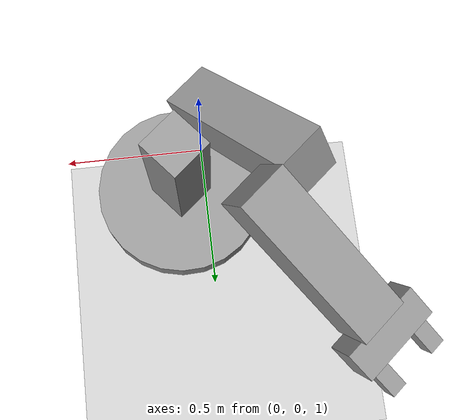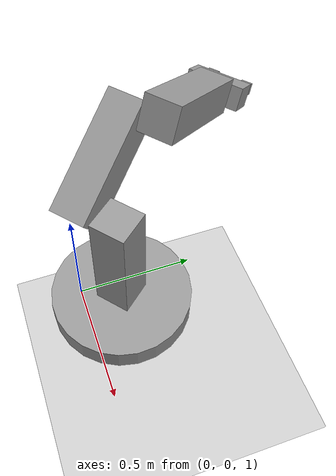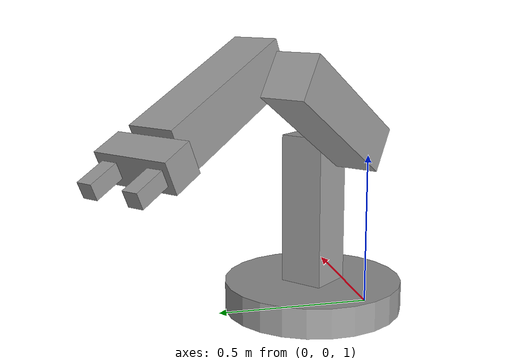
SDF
<sdf version="1.7">
 <world name="default">
  <model name="ground_plane">
   <static>1</static>
   <link name="link">
    <collision name="collision">
     <geometry><plane><normal>0 0 1</normal><size>100 100</size></plane></geometry>
     <surface>
      <contact><collide_bitmask>65535</collide_bitmask></contact>
      <friction><ode><mu>100</mu><mu2>50</mu2></ode></friction>
     </surface>
    </collision>
    <visual name="visual">
     <cast_shadows>0</cast_shadows>
     <geometry><plane><normal>0 0 1</normal><size>100 100</size></plane></geometry>
     <material>
      <script><uri>file://media/materials/scripts/gazebo.material</uri><name>Gazebo/Grey</name></script>
     </material>
    </visual>
   </link>
  </model>
  <model name="fixed_arm_robot_clone_1_clone">
   <link name="link_0">
    <inertial>
     <mass>1</mass>
     <inertia><ixx>0.145833</ixx><ixy>0</ixy><ixz>0</ixz><iyy>0.145833</iyy><iyz>0</iyz><izz>0.125</izz></inertia>
    </inertial>
    <pose>-0.37347 -0.501985 -0.410714 0 -0 0</pose>
    <visual name="visual">
     <geometry><cylinder><radius>0.3</radius><length>0.1</length></cylinder></geometry>
     <material>
      <lighting>1</lighting>
      <script><uri>file://media/materials/scripts/gazebo.material</uri><name>Gazebo/Grey</name></script>
      <shader type="pixel"><normal_map>__default__</normal_map></shader>
      <ambient>0.3 0.3 0.3 1</ambient>
      <diffuse>0.7 0.7 0.7 1</diffuse>
      <specular>0.01 0.01 0.01 1</specular>
      <emissive>0 0 0 1</emissive>
     </material>
    </visual>
    <collision name="collision">
     <geometry><cylinder><radius>0.3</radius><length>0.1</length></cylinder></geometry>
     <surface>
      <friction>
       <ode><mu>1</mu><mu2>1</mu2><fdir1>0 0 0</fdir1><slip1>0</slip1><slip2>0</slip2></ode>
       <torsional>
        <coefficient>1</coefficient>
        <patch_radius>0</patch_radius>
        <surface_radius>0</surface_radius>
        <use_patch_radius>1</use_patch_radius>
        <ode><slip>0</slip></ode>
       </torsional>
      </friction>
      <bounce><restitution_coefficient>0</restitution_coefficient><threshold>1e+06</threshold></bounce>
      <contact>
       <collide_without_contact>0</collide_without_contact>
       <collide_without_contact_bitmask>1</collide_without_contact_bitmask>
       <collide_bitmask>1</collide_bitmask>
       <ode>
        <soft_cfm>0</soft_cfm>
        <soft_erp>0.2</soft_erp>
        <kp>1e+13</kp>
        <kd>1</kd>
        <max_vel>0.01</max_vel>
        <min_depth>0</min_depth>
       </ode>
       <bullet>
        <split_impulse>1</split_impulse>
        <split_impulse_penetration_threshold>-0.01</split_impulse_penetration_threshold>
        <soft_cfm>0</soft_cfm>
        <soft_erp>0.2</soft_erp>
        <kp>1e+13</kp>
        <kd>1</kd>
       </bullet>
      </contact>
     </surface>
    </collision>
   </link>
   <link name="link_1">
    <inertial>
     <mass>1</mass>
     <inertia>
      <ixx>0.166667</ixx>
      <ixy>0</ixy>
      <ixz>0</ixz>
      <iyy>0.166667</iyy>
      <iyz>0</iyz>
      <izz>0.166667</izz>
     </inertia>
    </inertial>
    <pose>-0.37347 -0.501985 -0.110714 0 -0 0</pose>
    <visual name="visual">
     <geometry><box><size>0.15 0.15 0.5</size></box></geometry>
     <material>
      <lighting>1</lighting>
      <script><uri>file://media/materials/scripts/gazebo.material</uri><name>Gazebo/Grey</name></script>
      <shader type="pixel"><normal_map>__default__</normal_map></shader>
      <ambient>0.3 0.3 0.3 1</ambient>
      <diffuse>0.7 0.7 0.7 1</diffuse>
      <specular>0.01 0.01 0.01 1</specular>
      <emissive>0 0 0 1</emissive>
     </material>
    </visual>
    <collision name="collision">
     <geometry><box><size>0.15 0.15 0.5</size></box></geometry>
     <surface>
      <friction>
       <ode><mu>1</mu><mu2>1</mu2><fdir1>0 0 0</fdir1><slip1>0</slip1><slip2>0</slip2></ode>
       <torsional>
        <coefficient>1</coefficient>
        <patch_radius>0</patch_radius>
        <surface_radius>0</surface_radius>
        <use_patch_radius>1</use_patch_radius>
        <ode><slip>0</slip></ode>
       </torsional>
      </friction>
      <bounce><restitution_coefficient>0</restitution_coefficient><threshold>1e+06</threshold></bounce>
      <contact>
       <collide_without_contact>0</collide_without_contact>
       <collide_without_contact_bitmask>1</collide_without_contact_bitmask>
       <collide_bitmask>1</collide_bitmask>
       <ode>
        <soft_cfm>0</soft_cfm>
        <soft_erp>0.2</soft_erp>
        <kp>1e+13</kp>
        <kd>1</kd>
        <max_vel>0.01</max_vel>
        <min_depth>0</min_depth>
       </ode>
       <bullet>
        <split_impulse>1</split_impulse>
        <split_impulse_penetration_threshold>-0.01</split_impulse_penetration_threshold>
        <soft_cfm>0</soft_cfm>
        <soft_erp>0.2</soft_erp>
        <kp>1e+13</kp>
        <kd>1</kd>
       </bullet>
      </contact>
     </surface>
    </collision>
   </link>
   <link name="link_1_clone">
    <inertial>
     <mass>1</mass>
     <inertia>
      <ixx>0.166667</ixx>
      <ixy>0</ixy>
      <ixz>0</ixz>
      <iyy>0.166667</iyy>
      <iyz>0</iyz>
      <izz>0.166667</izz>
     </inertia>
    </inertial>
    <pose>-0.37347 -0.351985 0.139286 0 1 0</pose>
    <visual name="visual">
     <pose>0 0 0.175 0 -0 0</pose>
     <geometry><box><size>0.15 0.15 0.5</size></box></geometry>
     <material>
      <lighting>1</lighting>
      <script><uri>file://media/materials/scripts/gazebo.material</uri><name>Gazebo/Grey</name></script>
      <shader type="pixel"><normal_map>__default__</normal_map></shader>
      <ambient>0.3 0.3 0.3 1</ambient>
      <diffuse>0.7 0.7 0.7 1</diffuse>
      <specular>0.01 0.01 0.01 1</specular>
      <emissive>0 0 0 1</emissive>
     </material>
    </visual>
    <collision name="collision">
     <pose>0 0 0.175 0 -0 0</pose>
     <geometry><box><size>0.15 0.15 0.5</size></box></geometry>
     <surface>
      <friction>
       <ode><mu>1</mu><mu2>1</mu2><fdir1>0 0 0</fdir1><slip1>0</slip1><slip2>0</slip2></ode>
       <torsional>
        <coefficient>1</coefficient>
        <patch_radius>0</patch_radius>
        <surface_radius>0</surface_radius>
        <use_patch_radius>1</use_patch_radius>
        <ode><slip>0</slip></ode>
       </torsional>
      </friction>
      <bounce><restitution_coefficient>0</restitution_coefficient><threshold>1e+06</threshold></bounce>
      <contact>
       <collide_without_contact>0</collide_without_contact>
       <collide_without_contact_bitmask>1</collide_without_contact_bitmask>
       <collide_bitmask>1</collide_bitmask>
       <ode>
        <soft_cfm>0</soft_cfm>
        <soft_erp>0.2</soft_erp>
        <kp>1e+13</kp>
        <kd>1</kd>
        <max_vel>0.01</max_vel>
        <min_depth>0</min_depth>
       </ode>
       <bullet>
        <split_impulse>1</split_impulse>
        <split_impulse_penetration_threshold>-0.01</split_impulse_penetration_threshold>
        <soft_cfm>0</soft_cfm>
        <soft_erp>0.2</soft_erp>
        <kp>1e+13</kp>
        <kd>1</kd>
       </bullet>
      </contact>
     </surface>
    </collision>
   </link>
   <link name="link_1_clone_clone">
    <inertial>
     <mass>1</mass>
     <inertia>
      <ixx>0.166667</ixx>
      <ixy>0</ixy>
      <ixz>0</ixz>
      <iyy>0.166667</iyy>
      <iyz>0</iyz>
      <izz>0.166667</izz>
     </inertia>
    </inertial>
    <pose>-0.015845 -0.501985 0.368914 3.14159 1.14159 3.14159</pose>
    <visual name="visual">
     <pose>0 0 0.175 0 -0 0</pose>
     <geometry><box><size>0.15 0.15 0.5</size></box></geometry>
     <material>
      <lighting>1</lighting>
      <script><uri>file://media/materials/scripts/gazebo.material</uri><name>Gazebo/Grey</name></script>
      <shader type="pixel"><normal_map>__default__</normal_map></shader>
      <ambient>0.3 0.3 0.3 1</ambient>
      <diffuse>0.7 0.7 0.7 1</diffuse>
      <specular>0.01 0.01 0.01 1</specular>
      <emissive>0 0 0 1</emissive>
     </material>
    </visual>
    <collision name="collision">
     <pose>0 0 0.175 0 -0 0</pose>
     <geometry><box><size>0.15 0.15 0.5</size></box></geometry>
     <surface>
      <friction>
       <ode><mu>1</mu><mu2>1</mu2><fdir1>0 0 0</fdir1><slip1>0</slip1><slip2>0</slip2></ode>
       <torsional>
        <coefficient>1</coefficient>
        <patch_radius>0</patch_radius>
        <surface_radius>0</surface_radius>
        <use_patch_radius>1</use_patch_radius>
        <ode><slip>0</slip></ode>
       </torsional>
      </friction>
      <bounce><restitution_coefficient>0</restitution_coefficient><threshold>1e+06</threshold></bounce>
      <contact>
       <collide_without_contact>0</collide_without_contact>
       <collide_without_contact_bitmask>1</collide_without_contact_bitmask>
       <collide_bitmask>1</collide_bitmask>
       <ode>
        <soft_cfm>0</soft_cfm>
        <soft_erp>0.2</soft_erp>
        <kp>1e+13</kp>
        <kd>1</kd>
        <max_vel>0.01</max_vel>
        <min_depth>0</min_depth>
       </ode>
       <bullet>
        <split_impulse>1</split_impulse>
        <split_impulse_penetration_threshold>-0.01</split_impulse_penetration_threshold>
        <soft_cfm>0</soft_cfm>
        <soft_erp>0.2</soft_erp>
        <kp>1e+13</kp>
        <kd>1</kd>
       </bullet>
      </contact>
     </surface>
    </collision>
   </link>
   <link name="link_2">
    <inertial>
     <mass>1</mass>
     <inertia>
      <ixx>0.166667</ixx>
      <ixy>0</ixy>
      <ixz>0</ixz>
      <iyy>0.166667</iyy>
      <iyz>0</iyz>
      <izz>0.166667</izz>
     </inertia>
    </inertial>
    <pose>0.416072 -0.501985 0.171244 -1.5708 1.14159 -3.14159</pose>
    <visual name="visual">
     <geometry><box><size>0.1 0.1 0.25</size></box></geometry>
     <material>
      <lighting>1</lighting>
      <script><uri>file://media/materials/scripts/gazebo.material</uri><name>Gazebo/Grey</name></script>
      <shader type="pixel"><normal_map>__default__</normal_map></shader>
      <ambient>0.3 0.3 0.3 1</ambient>
      <diffuse>0.7 0.7 0.7 1</diffuse>
      <specular>0.01 0.01 0.01 1</specular>
      <emissive>0 0 0 1</emissive>
     </material>
    </visual>
    <collision name="collision">
     <geometry><box><size>0.1 0.1 0.25</size></box></geometry>
     <surface>
      <friction>
       <ode><mu>1</mu><mu2>1</mu2><fdir1>0 0 0</fdir1><slip1>0</slip1><slip2>0</slip2></ode>
       <torsional>
        <coefficient>1</coefficient>
        <patch_radius>0</patch_radius>
        <surface_radius>0</surface_radius>
        <use_patch_radius>1</use_patch_radius>
        <ode><slip>0</slip></ode>
       </torsional>
      </friction>
      <bounce><restitution_coefficient>0</restitution_coefficient><threshold>1e+06</threshold></bounce>
      <contact>
       <collide_without_contact>0</collide_without_contact>
       <collide_without_contact_bitmask>1</collide_without_contact_bitmask>
       <collide_bitmask>1</collide_bitmask>
       <ode>
        <soft_cfm>0</soft_cfm>
        <soft_erp>0.2</soft_erp>
        <kp>1e+13</kp>
        <kd>1</kd>
        <max_vel>0.01</max_vel>
        <min_depth>0</min_depth>
       </ode>
       <bullet>
        <split_impulse>1</split_impulse>
        <split_impulse_penetration_threshold>-0.01</split_impulse_penetration_threshold>
        <soft_cfm>0</soft_cfm>
        <soft_erp>0.2</soft_erp>
        <kp>1e+13</kp>
        <kd>1</kd>
       </bullet>
      </contact>
     </surface>
    </collision>
   </link>
   <link name="link_3">
    <inertial>
     <mass>1</mass>
     <inertia>
      <ixx>0.166667</ixx>
      <ixy>0</ixy>
      <ixz>0</ixz>
      <iyy>0.166667</iyy>
      <iyz>0</iyz>
      <izz>0.166667</izz>
     </inertia>
    </inertial>
    <pose>0.507001 -0.421985 0.12963 -1e-06 1.14159 -3.14159</pose>
    <visual name="visual">
     <geometry><box><size>0.05 0.05 0.1</size></box></geometry>
     <material>
      <lighting>1</lighting>
      <script><uri>file://media/materials/scripts/gazebo.material</uri><name>Gazebo/Grey</name></script>
      <shader type="pixel"><normal_map>__default__</normal_map></shader>
      <ambient>0.3 0.3 0.3 1</ambient>
      <diffuse>0.7 0.7 0.7 1</diffuse>
      <specular>0.01 0.01 0.01 1</specular>
      <emissive>0 0 0 1</emissive>
     </material>
    </visual>
    <collision name="collision">
     <geometry><box><size>0.05 0.05 0.1</size></box></geometry>
     <surface>
      <friction>
       <ode><mu>1</mu><mu2>1</mu2><fdir1>0 0 0</fdir1><slip1>0</slip1><slip2>0</slip2></ode>
       <torsional>
        <coefficient>1</coefficient>
        <patch_radius>0</patch_radius>
        <surface_radius>0</surface_radius>
        <use_patch_radius>1</use_patch_radius>
        <ode><slip>0</slip></ode>
       </torsional>
      </friction>
      <bounce><restitution_coefficient>0</restitution_coefficient><threshold>1e+06</threshold></bounce>
      <contact>
       <collide_without_contact>0</collide_without_contact>
       <collide_without_contact_bitmask>1</collide_without_contact_bitmask>
       <collide_bitmask>1</collide_bitmask>
       <ode>
        <soft_cfm>0</soft_cfm>
        <soft_erp>0.2</soft_erp>
        <kp>1e+13</kp>
        <kd>1</kd>
        <max_vel>0.01</max_vel>
        <min_depth>0</min_depth>
       </ode>
       <bullet>
        <split_impulse>1</split_impulse>
        <split_impulse_penetration_threshold>-0.01</split_impulse_penetration_threshold>
        <soft_cfm>0</soft_cfm>
        <soft_erp>0.2</soft_erp>
        <kp>1e+13</kp>
        <kd>1</kd>
       </bullet>
      </contact>
     </surface>
    </collision>
   </link>
   <link name="link_3_clone">
    <inertial>
     <mass>1</mass>
     <inertia>
      <ixx>0.166667</ixx>
      <ixy>0</ixy>
      <ixz>0</ixz>
      <iyy>0.166667</iyy>
      <iyz>0</iyz>
      <izz>0.166667</izz>
     </inertia>
    </inertial>
    <pose>0.507002 -0.581985 0.12963 -1e-06 1.14159 -3.14159</pose>
    <visual name="visual">
     <geometry><box><size>0.05 0.05 0.1</size></box></geometry>
     <material>
      <lighting>1</lighting>
      <script><uri>file://media/materials/scripts/gazebo.material</uri><name>Gazebo/Grey</name></script>
      <shader type="pixel"><normal_map>__default__</normal_map></shader>
      <ambient>0.3 0.3 0.3 1</ambient>
      <diffuse>0.7 0.7 0.7 1</diffuse>
      <specular>0.01 0.01 0.01 1</specular>
      <emissive>0 0 0 1</emissive>
     </material>
    </visual>
    <collision name="collision">
     <geometry><box><size>0.05 0.05 0.1</size></box></geometry>
     <surface>
      <friction>
       <ode><mu>1</mu><mu2>1</mu2><fdir1>0 0 0</fdir1><slip1>0</slip1><slip2>0</slip2></ode>
       <torsional>
        <coefficient>1</coefficient>
        <patch_radius>0</patch_radius>
        <surface_radius>0</surface_radius>
        <use_patch_radius>1</use_patch_radius>
        <ode><slip>0</slip></ode>
       </torsional>
      </friction>
      <bounce><restitution_coefficient>0</restitution_coefficient><threshold>1e+06</threshold></bounce>
      <contact>
       <collide_without_contact>0</collide_without_contact>
       <collide_without_contact_bitmask>1</collide_without_contact_bitmask>
       <collide_bitmask>1</collide_bitmask>
       <ode>
        <soft_cfm>0</soft_cfm>
        <soft_erp>0.2</soft_erp>
        <kp>1e+13</kp>
        <kd>1</kd>
        <max_vel>0.01</max_vel>
        <min_depth>0</min_depth>
       </ode>
       <bullet>
        <split_impulse>1</split_impulse>
        <split_impulse_penetration_threshold>-0.01</split_impulse_penetration_threshold>
        <soft_cfm>0</soft_cfm>
        <soft_erp>0.2</soft_erp>
        <kp>1e+13</kp>
        <kd>1</kd>
       </bullet>
      </contact>
     </surface>
    </collision>
   </link>
   <joint name="link_0_JOINT_0" type="fixed">
    <parent>link_0</parent>
    <child>link_1</child>
    <physics>
     <ode><limit><cfm>0</cfm><erp>0.2</erp></limit><suspension><cfm>0</cfm><erp>0.2</erp></suspension></ode>
    </physics>
   </joint>
   <joint name="link_1_JOINT_5" type="fixed">
    <parent>link_1</parent>
    <child>link_1_clone</child>
    <physics>
     <ode><limit><cfm>0</cfm><erp>0.2</erp></limit><suspension><cfm>0</cfm><erp>0.2</erp></suspension></ode>
    </physics>
   </joint>
   <joint name="link_1_clone_JOINT_6" type="fixed">
    <parent>link_1_clone</parent>
    <child>link_1_clone_clone</child>
    <physics>
     <ode><limit><cfm>0</cfm><erp>0.2</erp></limit><suspension><cfm>0</cfm><erp>0.2</erp></suspension></ode>
    </physics>
   </joint>
   <joint name="link_1_clone_clone_JOINT_8" type="fixed">
    <parent>link_1_clone_clone</parent>
    <child>link_2</child>
    <physics>
     <ode><limit><cfm>0</cfm><erp>0.2</erp></limit><suspension><cfm>0</cfm><erp>0.2</erp></suspension></ode>
    </physics>
   </joint>
   <joint name="link_2_JOINT_9" type="fixed">
    <parent>link_2</parent>
    <child>link_3</child>
    <physics>
     <ode><limit><cfm>0</cfm><erp>0.2</erp></limit><suspension><cfm>0</cfm><erp>0.2</erp></suspension></ode>
    </physics>
   </joint>
   <joint name="link_3_JOINT_10" type="fixed">
    <parent>link_3</parent>
    <child>link_3_clone</child>
    <physics>
     <ode><limit><cfm>0</cfm><erp>0.2</erp></limit><suspension><cfm>0</cfm><erp>0.2</erp></suspension></ode>
    </physics>
   </joint>
   <static>1</static>
   <pose>-0.537576 0.120454 1.42548 -1e-06 -1e-06 2.27272</pose>
  </model>
 </world>
</sdf>
